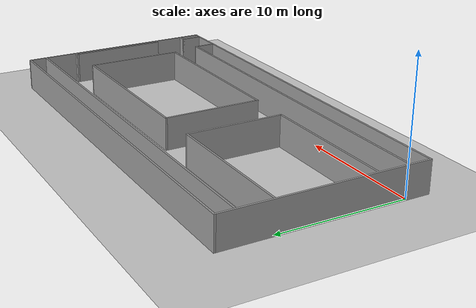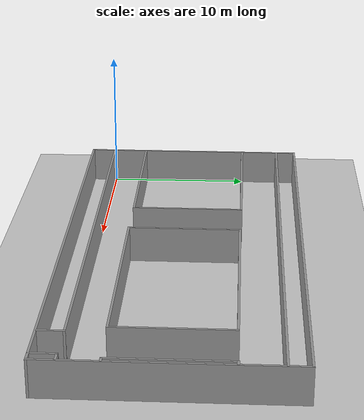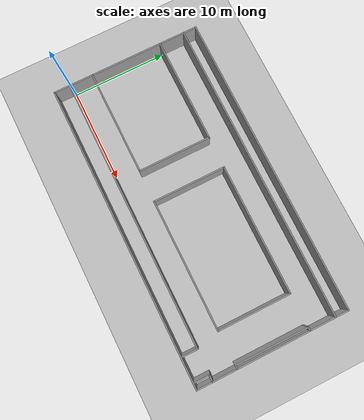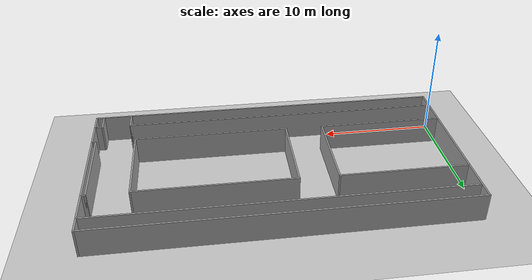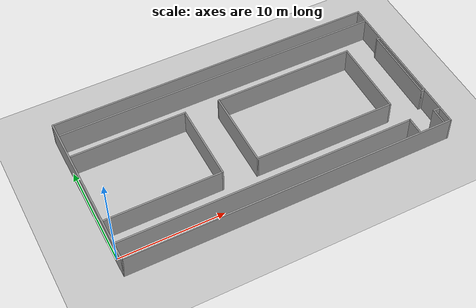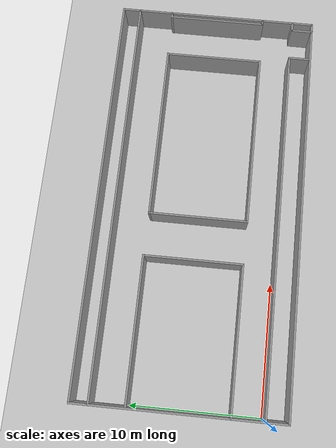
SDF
<sdf version="1.7">
 <world name="default">
  <light name="sun" type="directional">
   <pose>0 0 10 0 -0 0</pose>
   <diffuse>0.8 0.8 0.8 1</diffuse>
   <specular>0.2 0.2 0.2 1</specular>
   <attenuation>
    <range>1000</range>
    <constant>0.9</constant>
    <linear>0.01</linear>
    <quadratic>0.001</quadratic>
   </attenuation>
   <direction>-0.5 0.1 -0.9</direction>
   <spot><inner_angle>0</inner_angle><outer_angle>0</outer_angle><falloff>0</falloff></spot>
  </light>
  <model name="ground_plane">
   <static>1</static>
   <link name="link">
    <collision name="collision">
     <geometry><plane><normal>0 0 1</normal><size>100 100</size></plane></geometry>
     <surface>
      <contact><collide_bitmask>65535</collide_bitmask></contact>
      <friction><ode><mu>100</mu><mu2>50</mu2></ode></friction>
     </surface>
    </collision>
    <visual name="visual">
     <cast_shadows>0</cast_shadows>
     <geometry><plane><normal>0 0 1</normal><size>100 100</size></plane></geometry>
     <material>
      <script><uri>file://media/materials/scripts/gazebo.material</uri><name>Gazebo/Grey</name></script>
     </material>
    </visual>
   </link>
  </model>
  <gravity>0 0 -9.8</gravity>
  <magnetic_field>6e-06 2.3e-05 -4.2e-05</magnetic_field>
  <atmosphere type="adiabatic"/>
  <physics type="ode">
   <max_step_size>0.001</max_step_size>
   <real_time_factor>1</real_time_factor>
   <real_time_update_rate>1000</real_time_update_rate>
  </physics>
  <scene><ambient>0.4 0.4 0.4 1</ambient><background>0.7 0.7 0.7 1</background><shadows>1</shadows></scene>
  <spherical_coordinates>
   <surface_model>EARTH_WGS84</surface_model>
   <latitude_deg>0</latitude_deg>
   <longitude_deg>0</longitude_deg>
   <elevation>0</elevation>
   <heading_deg>0</heading_deg>
  </spherical_coordinates>
  <model name="vfeld">
   <pose>15.85 6.15 0 0 -0 0</pose>
   <link name="Wall_12">
    <collision name="Wall_12_Collision">
     <geometry><box><size>32 0.15 2.5</size></box></geometry>
     <pose>0 0 1.25 0 -0 0</pose>
    </collision>
    <visual name="Wall_12_Visual">
     <pose>0 0 1.25 0 -0 0</pose>
     <geometry><box><size>32 0.15 2.5</size></box></geometry>
     <material>
      <script><uri>file://media/materials/scripts/gazebo.material</uri><name>Gazebo/Grey</name></script>
      <ambient>1 1 1 1</ambient>
     </material>
     <meta><layer>0</layer></meta>
    </visual>
    <pose>-0 -7.925 0 0 -0 0</pose>
   </link>
   <link name="Wall_14">
    <collision name="Wall_14_Collision">
     <geometry><box><size>32 0.15 2.5</size></box></geometry>
     <pose>0 0 1.25 0 -0 0</pose>
    </collision>
    <visual name="Wall_14_Visual">
     <pose>0 0 1.25 0 -0 0</pose>
     <geometry><box><size>32 0.15 2.5</size></box></geometry>
     <material>
      <script><uri>file://media/materials/scripts/gazebo.material</uri><name>Gazebo/Grey</name></script>
      <ambient>1 1 1 1</ambient>
     </material>
     <meta><layer>0</layer></meta>
    </visual>
    <pose>-0 7.925 0 0 -0 3.14159</pose>
   </link>
   <link name="Wall_15">
    <collision name="Wall_15_Collision">
     <geometry><box><size>16 0.15 2.5</size></box></geometry>
     <pose>0 0 1.25 0 -0 0</pose>
    </collision>
    <visual name="Wall_15_Visual">
     <pose>0 0 1.25 0 -0 0</pose>
     <geometry><box><size>16 0.15 2.5</size></box></geometry>
     <material>
      <script><uri>file://media/materials/scripts/gazebo.material</uri><name>Gazebo/Grey</name></script>
      <ambient>1 1 1 1</ambient>
     </material>
     <meta><layer>0</layer></meta>
    </visual>
    <pose>-15.925 0 0 0 -0 -1.5708</pose>
   </link>
   <link name="Wall_19">
    <collision name="Wall_19_Collision">
     <geometry><box><size>28.75 0.15 2.5</size></box></geometry>
     <pose>0 0 1.25 0 -0 0</pose>
    </collision>
    <visual name="Wall_19_Visual">
     <pose>0 0 1.25 0 -0 0</pose>
     <geometry><box><size>28.75 0.15 2.5</size></box></geometry>
     <material>
      <script><uri>file://media/materials/scripts/gazebo.material</uri><name>Gazebo/Grey</name></script>
      <ambient>1 1 1 1</ambient>
     </material>
     <meta><layer>0</layer></meta>
    </visual>
    <pose>-1.57879 -6.23168 0 0 -0 0</pose>
   </link>
   <link name="Wall_20">
    <collision name="Wall_20_Collision">
     <geometry><box><size>1.75 0.15 2.5</size></box></geometry>
     <pose>0 0 1.25 0 -0 0</pose>
    </collision>
    <visual name="Wall_20_Visual">
     <pose>0 0 1.25 0 -0 0</pose>
     <geometry><box><size>1.75 0.15 2.5</size></box></geometry>
     <material>
      <script><uri>file://media/materials/scripts/gazebo.material</uri><name>Gazebo/Grey</name></script>
      <ambient>1 1 1 1</ambient>
     </material>
     <meta><layer>0</layer></meta>
    </visual>
    <pose>12.7212 -7.03168 0 0 -0 -1.5708</pose>
   </link>
   <link name="Wall_22">
    <collision name="Wall_22_Collision">
     <geometry><box><size>7.75 0.15 2.5</size></box></geometry>
     <pose>0 0 1.25 0 -0 0</pose>
    </collision>
    <visual name="Wall_22_Visual">
     <pose>0 0 1.25 0 -0 0</pose>
     <geometry><box><size>7.75 0.15 2.5</size></box></geometry>
     <material>
      <script><uri>file://media/materials/scripts/gazebo.material</uri><name>Gazebo/Grey</name></script>
      <ambient>1 1 1 1</ambient>
     </material>
     <meta><layer>0</layer></meta>
    </visual>
    <pose>12.1419 -0.015051 0 0 -0 1.5708</pose>
   </link>
   <link name="Wall_23">
    <collision name="Wall_23_Collision">
     <geometry><box><size>13.75 0.15 2.5</size></box></geometry>
     <pose>0 0 1.25 0 -0 0</pose>
    </collision>
    <visual name="Wall_23_Visual">
     <pose>0 0 1.25 0 -0 0</pose>
     <geometry><box><size>13.75 0.15 2.5</size></box></geometry>
     <material>
      <script><uri>file://media/materials/scripts/gazebo.material</uri><name>Gazebo/Grey</name></script>
      <ambient>1 1 1 1</ambient>
     </material>
     <meta><layer>0</layer></meta>
    </visual>
    <pose>5.34186 3.78495 0 0 -0 3.14159</pose>
   </link>
   <link name="Wall_24">
    <collision name="Wall_24_Collision">
     <geometry><box><size>7.75 0.15 2.5</size></box></geometry>
     <pose>0 0 1.25 0 -0 0</pose>
    </collision>
    <visual name="Wall_24_Visual">
     <pose>0 0 1.25 0 -0 0</pose>
     <geometry><box><size>7.75 0.15 2.5</size></box></geometry>
     <material>
      <script><uri>file://media/materials/scripts/gazebo.material</uri><name>Gazebo/Grey</name></script>
      <ambient>1 1 1 1</ambient>
     </material>
     <meta><layer>0</layer></meta>
    </visual>
    <pose>-1.45814 -0.015051 0 0 -0 -1.5708</pose>
   </link>
   <link name="Wall_25">
    <collision name="Wall_25_Collision">
     <geometry><box><size>13.75 0.15 2.5</size></box></geometry>
     <pose>0 0 1.25 0 -0 0</pose>
    </collision>
    <visual name="Wall_25_Visual">
     <pose>0 0 1.25 0 -0 0</pose>
     <geometry><box><size>13.75 0.15 2.5</size></box></geometry>
     <material>
      <script><uri>file://media/materials/scripts/gazebo.material</uri><name>Gazebo/Grey</name></script>
      <ambient>1 1 1 1</ambient>
     </material>
     <meta><layer>0</layer></meta>
    </visual>
    <pose>5.34186 -3.81505 0 0 -0 0</pose>
   </link>
   <link name="Wall_27">
    <collision name="Wall_27_Collision">
     <geometry><box><size>11.25 0.15 2.5</size></box></geometry>
     <pose>0 0 1.25 0 -0 0</pose>
    </collision>
    <visual name="Wall_27_Visual">
     <pose>0 0 1.25 0 -0 0</pose>
     <geometry><box><size>11.25 0.15 2.5</size></box></geometry>
     <material>
      <script><uri>file://media/materials/scripts/gazebo.material</uri><name>Gazebo/Grey</name></script>
      <ambient>1 1 1 1</ambient>
     </material>
     <meta><layer>0</layer></meta>
    </visual>
    <pose>-10.3594 -3.75387 0 0 -0 0</pose>
   </link>
   <link name="Wall_28">
    <collision name="Wall_28_Collision">
     <geometry><box><size>7.75 0.15 2.5</size></box></geometry>
     <pose>0 0 1.25 0 -0 0</pose>
    </collision>
    <visual name="Wall_28_Visual">
     <pose>0 0 1.25 0 -0 0</pose>
     <geometry><box><size>7.75 0.15 2.5</size></box></geometry>
     <material>
      <script><uri>file://media/materials/scripts/gazebo.material</uri><name>Gazebo/Grey</name></script>
      <ambient>1 1 1 1</ambient>
     </material>
     <meta><layer>0</layer></meta>
    </visual>
    <pose>-4.80938 0.04613 0 0 -0 1.5708</pose>
   </link>
   <link name="Wall_29">
    <collision name="Wall_29_Collision">
     <geometry><box><size>11.25 0.15 2.5</size></box></geometry>
     <pose>0 0 1.25 0 -0 0</pose>
    </collision>
    <visual name="Wall_29_Visual">
     <pose>0 0 1.25 0 -0 0</pose>
     <geometry><box><size>11.25 0.15 2.5</size></box></geometry>
     <material>
      <script><uri>file://media/materials/scripts/gazebo.material</uri><name>Gazebo/Grey</name></script>
      <ambient>1 1 1 1</ambient>
     </material>
     <meta><layer>0</layer></meta>
    </visual>
    <pose>-10.3594 3.84613 0 0 -0 3.14159</pose>
   </link>
   <link name="Wall_34">
    <collision name="Wall_34_Collision">
     <geometry><box><size>31.884 0.15 2.5</size></box></geometry>
     <pose>0 0 1.25 0 -0 0</pose>
    </collision>
    <visual name="Wall_34_Visual">
     <pose>0 0 1.25 0 -0 0</pose>
     <geometry><box><size>31.884 0.15 2.5</size></box></geometry>
     <material>
      <script><uri>file://media/materials/scripts/gazebo.material</uri><name>Gazebo/Grey</name></script>
      <ambient>1 1 1 1</ambient>
     </material>
     <meta><layer>0</layer></meta>
    </visual>
    <pose>-0.000757 6.53483 0 0 -0 0</pose>
   </link>
   <link name="Wall_37">
    <collision name="Wall_37_Collision">
     <geometry><box><size>16 0.15 2.5</size></box></geometry>
     <pose>0 0 1.25 0 -0 0</pose>
    </collision>
    <visual name="Wall_37_Visual">
     <pose>0 0 1.25 0 -0 0</pose>
     <geometry><box><size>16 0.15 2.5</size></box></geometry>
     <material>
      <script><uri>file://media/materials/scripts/gazebo.material</uri><name>Gazebo/Grey</name></script>
      <ambient>1 1 1 1</ambient>
     </material>
     <meta><layer>0</layer></meta>
    </visual>
    <pose>15.925 0 0 0 -0 -1.5708</pose>
   </link>
   <link name="Wall_41">
    <collision name="Wall_41_Collision">
     <geometry><box><size>0.424392 0.15 2.5</size></box></geometry>
     <pose>0 0 1.25 0 -0 0</pose>
    </collision>
    <visual name="Wall_41_Visual">
     <pose>0 0 1.25 0 -0 0</pose>
     <geometry><box><size>0.424392 0.15 2.5</size></box></geometry>
     <material>
      <script><uri>file://media/materials/scripts/gazebo.material</uri><name>Gazebo/Grey</name></script>
      <ambient>1 1 1 1</ambient>
     </material>
     <meta><layer>0</layer></meta>
    </visual>
    <pose>15.7292 3.82083 0 0 -0 3.14159</pose>
   </link>
   <link name="Wall_42">
    <collision name="Wall_42_Collision">
     <geometry><box><size>7.75 0.15 2.5</size></box></geometry>
     <pose>0 0 1.25 0 -0 0</pose>
    </collision>
    <visual name="Wall_42_Visual">
     <pose>0 0 1.25 0 -0 0</pose>
     <geometry><box><size>7.75 0.15 2.5</size></box></geometry>
     <material>
      <script><uri>file://media/materials/scripts/gazebo.material</uri><name>Gazebo/Grey</name></script>
      <ambient>1 1 1 1</ambient>
     </material>
     <meta><layer>0</layer></meta>
    </visual>
    <pose>15.5922 0.020828 0 0 -0 -1.5708</pose>
   </link>
   <link name="Wall_43">
    <collision name="Wall_43_Collision">
     <geometry><box><size>0.424 0.15 2.5</size></box></geometry>
     <pose>0 0 1.25 0 -0 0</pose>
    </collision>
    <visual name="Wall_43_Visual">
     <pose>0 0 1.25 0 -0 0</pose>
     <geometry><box><size>0.424 0.15 2.5</size></box></geometry>
     <material>
      <script><uri>file://media/materials/scripts/gazebo.material</uri><name>Gazebo/Grey</name></script>
      <ambient>1 1 1 1</ambient>
     </material>
     <meta><layer>0</layer></meta>
    </visual>
    <pose>15.7292 -3.77917 0 0 -0 0</pose>
   </link>
   <link name="Wall_45">
    <collision name="Wall_45_Collision">
     <geometry><box><size>1.75 0.15 2.5</size></box></geometry>
     <pose>0 0 1.25 0 -0 0</pose>
    </collision>
    <visual name="Wall_45_Visual">
     <pose>0 0 1.25 0 -0 0</pose>
     <geometry><box><size>1.75 0.15 2.5</size></box></geometry>
     <material>
      <script><uri>file://media/materials/scripts/gazebo.material</uri><name>Gazebo/Grey</name></script>
      <ambient>1 1 1 1</ambient>
     </material>
     <meta><layer>0</layer></meta>
    </visual>
    <pose>15.2598 -7.08972 0 0 -0 1.5708</pose>
   </link>
   <link name="Wall_46">
    <collision name="Wall_46_Collision">
     <geometry><box><size>0.75 0.15 2.5</size></box></geometry>
     <pose>0 0 1.25 0 -0 0</pose>
    </collision>
    <visual name="Wall_46_Visual">
     <pose>0 0 1.25 0 -0 0</pose>
     <geometry><box><size>0.75 0.15 2.5</size></box></geometry>
     <material>
      <script><uri>file://media/materials/scripts/gazebo.material</uri><name>Gazebo/Grey</name></script>
      <ambient>1 1 1 1</ambient>
     </material>
     <meta><layer>0</layer></meta>
    </visual>
    <pose>15.5598 -6.28972 0 0 -0 0</pose>
   </link>
   <static>1</static>
  </model>
 </world>
</sdf>
